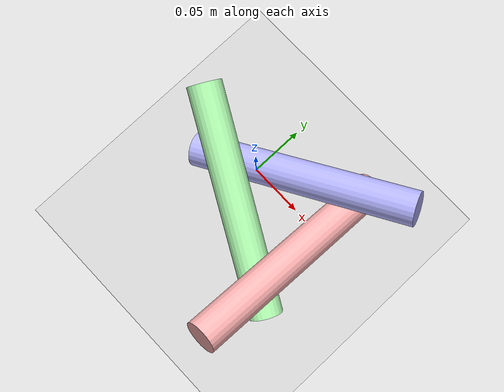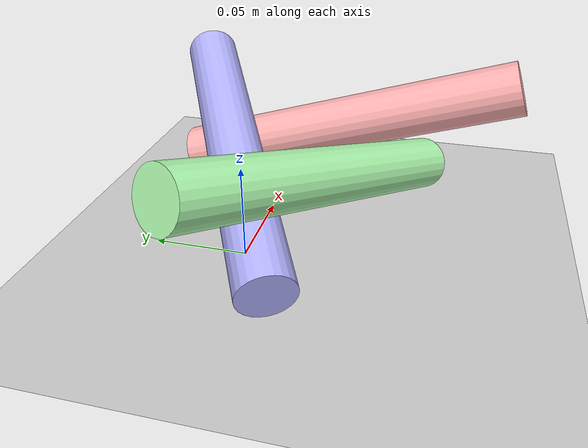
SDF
<sdf version="1.6">
 <world name="default">
  <light name="sun" type="directional">
   <pose>0 0 10 0 -0 0</pose>
   <diffuse>0.8 0.8 0.8 1</diffuse>
   <specular>0.2 0.2 0.2 1</specular>
   <attenuation>
    <range>1000</range>
    <constant>0.9</constant>
    <linear>0.01</linear>
    <quadratic>0.001</quadratic>
   </attenuation>
   <direction>-0.5 0.1 -0.9</direction>
  </light>
  <gravity>0 0 -9.8</gravity>
  <magnetic_field>6e-06 2.3e-05 -4.2e-05</magnetic_field>
  <atmosphere type="adiabatic"/>
  <physics name="default_physics" default="0" type="ode">
   <max_step_size>0.001</max_step_size>
   <real_time_factor>1</real_time_factor>
   <real_time_update_rate>1000</real_time_update_rate>
  </physics>
  <scene><ambient>0.4 0.4 0.4 1</ambient><background>0.7 0.7 0.7 1</background><shadows>1</shadows></scene>
  <spherical_coordinates>
   <surface_model>EARTH_WGS84</surface_model>
   <latitude_deg>0</latitude_deg>
   <longitude_deg>0</longitude_deg>
   <elevation>0</elevation>
   <heading_deg>0</heading_deg>
  </spherical_coordinates>
  <model name="ground_plane">
   <static>1</static>
   <link name="link">
    <collision name="collision">
     <geometry><plane><normal>0 0 1</normal><size>100 100</size></plane></geometry>
     <surface>
      <contact><collide_bitmask>65535</collide_bitmask></contact>
      <friction><ode><mu>100</mu><mu2>50</mu2></ode></friction>
     </surface>
    </collision>
    <visual name="visual">
     <cast_shadows>0</cast_shadows>
     <geometry><plane><normal>0 0 1</normal><size>100 100</size></plane></geometry>
     <material>
      <script><uri>file://media/materials/scripts/gazebo.material</uri><name>Gazebo/Grey</name></script>
     </material>
    </visual>
   </link>
   <pose>0.247663 0.314546 0 0 -0 0</pose>
  </model>
  <model name="blueStick">
   <link name="link_5">
    <inertial>
     <mass>0.00025133</mass>
     <inertia><ixx>8.6e-07</ixx><ixy>0</ixy><ixz>0</ixz><iyy>8.6e-07</iyy><iyz>0</iyz><izz>5e-08</izz></inertia>
    </inertial>
    <pose>-0.034517 0.108196 0.105338 -2.84399 -0.887231 -2.9509</pose>
    <visual name="visual">
     <geometry><cylinder><radius>0.015</radius><length>0.2</length></cylinder></geometry>
     <material>
      <lighting>1</lighting>
      <script><uri>file://media/materials/scripts/gazebo.material</uri><name>Gazebo/Grey</name></script>
      <shader type="pixel"><normal_map>__default__</normal_map></shader>
      <ambient>0.3 0.3 1 1</ambient>
      <diffuse>0.7 0.7 1 1</diffuse>
      <specular>0.01 0.01 0.01 1</specular>
      <emissive>0 0 0 1</emissive>
     </material>
    </visual>
    <collision name="collision">
     <geometry><cylinder><radius>0.015</radius><length>0.2</length></cylinder></geometry>
     <surface>
      <friction>
       <ode><mu>20</mu><mu2>20</mu2><fdir1>0 0 0</fdir1><slip1>0</slip1><slip2>0</slip2></ode>
       <torsional>
        <coefficient>1</coefficient>
        <patch_radius>0</patch_radius>
        <surface_radius>0</surface_radius>
        <use_patch_radius>1</use_patch_radius>
        <ode><slip>0</slip></ode>
       </torsional>
      </friction>
      <bounce><restitution_coefficient>0</restitution_coefficient><threshold>1e+06</threshold></bounce>
      <contact>
       <collide_without_contact>0</collide_without_contact>
       <collide_without_contact_bitmask>1</collide_without_contact_bitmask>
       <collide_bitmask>1</collide_bitmask>
       <ode>
        <soft_cfm>0</soft_cfm>
        <soft_erp>0.2</soft_erp>
        <kp>1e+13</kp>
        <kd>1</kd>
        <max_vel>0.01</max_vel>
        <min_depth>0</min_depth>
       </ode>
       <bullet>
        <split_impulse>1</split_impulse>
        <split_impulse_penetration_threshold>-0.01</split_impulse_penetration_threshold>
        <soft_cfm>0</soft_cfm>
        <soft_erp>0.2</soft_erp>
        <kp>1e+13</kp>
        <kd>1</kd>
       </bullet>
      </contact>
     </surface>
    </collision>
   </link>
   <static>1</static>
   <pose>0.027946 -0.129124 -0.007641 -0.468805 0.11416 -0.266955</pose>
  </model>
  <model name="redStick">
   <link name="link_2">
    <inertial>
     <mass>0.00025133</mass>
     <inertia><ixx>8.6e-07</ixx><ixy>0</ixy><ixz>0</ixz><iyy>8.6e-07</iyy><iyz>0</iyz><izz>5e-08</izz></inertia>
    </inertial>
    <pose>-0.129448 -0.105062 -0.011075 -1.53855 0 0</pose>
    <visual name="visual">
     <geometry><cylinder><radius>0.015</radius><length>0.2</length></cylinder></geometry>
     <material>
      <lighting>1</lighting>
      <script><uri>file://media/materials/scripts/gazebo.material</uri><name>Gazebo/Grey</name></script>
      <shader type="pixel"><normal_map>__default__</normal_map></shader>
      <ambient>1 0.3 0.3 1</ambient>
      <diffuse>1 0.7 0.7 1</diffuse>
      <specular>0.01 0.01 0.01 1</specular>
      <emissive>0 0 0 1</emissive>
     </material>
    </visual>
    <collision name="collision">
     <geometry><cylinder><radius>0.015</radius><length>0.2</length></cylinder></geometry>
     <surface>
      <friction>
       <ode><mu>20</mu><mu2>20</mu2><fdir1>0 0 0</fdir1><slip1>0</slip1><slip2>0</slip2></ode>
       <torsional>
        <coefficient>1</coefficient>
        <patch_radius>0</patch_radius>
        <surface_radius>0</surface_radius>
        <use_patch_radius>1</use_patch_radius>
        <ode><slip>0</slip></ode>
       </torsional>
      </friction>
      <bounce><restitution_coefficient>0</restitution_coefficient><threshold>1e+06</threshold></bounce>
      <contact>
       <collide_without_contact>0</collide_without_contact>
       <collide_without_contact_bitmask>1</collide_without_contact_bitmask>
       <collide_bitmask>1</collide_bitmask>
       <ode>
        <soft_cfm>0</soft_cfm>
        <soft_erp>0.2</soft_erp>
        <kp>1e+13</kp>
        <kd>1</kd>
        <max_vel>0.01</max_vel>
        <min_depth>0</min_depth>
       </ode>
       <bullet>
        <split_impulse>1</split_impulse>
        <split_impulse_penetration_threshold>-0.01</split_impulse_penetration_threshold>
        <soft_cfm>0</soft_cfm>
        <soft_erp>0.2</soft_erp>
        <kp>1e+13</kp>
        <kd>1</kd>
       </bullet>
      </contact>
     </surface>
    </collision>
   </link>
   <static>1</static>
   <pose>0.198074 0.044669 -0.042165 -0.382095 0.492066 -0.187156</pose>
  </model>
  <model name="greenStick">
   <link name="link_4">
    <inertial>
     <mass>0.00025133</mass>
     <inertia><ixx>8.6e-07</ixx><ixy>0</ixy><ixz>0</ixz><iyy>8.6e-07</iyy><iyz>0</iyz><izz>5e-08</izz></inertia>
    </inertial>
    <pose>0.033094 -0.002991 0.062967 -0.385274 -1.07072 -0.05997</pose>
    <visual name="visual">
     <geometry><cylinder><radius>0.015</radius><length>0.2</length></cylinder></geometry>
     <material>
      <lighting>1</lighting>
      <script><uri>file://media/materials/scripts/gazebo.material</uri><name>Gazebo/Grey</name></script>
      <shader type="pixel"><normal_map>__default__</normal_map></shader>
      <ambient>0.3 1 0.3 1</ambient>
      <diffuse>0.7 1 0.7 1</diffuse>
      <specular>0.01 0.01 0.01 1</specular>
      <emissive>0 0 0 1</emissive>
     </material>
    </visual>
    <collision name="collision">
     <geometry><cylinder><radius>0.015</radius><length>0.2</length></cylinder></geometry>
     <surface>
      <friction>
       <ode><mu>20</mu><mu2>20</mu2><fdir1>0 0 0</fdir1><slip1>0</slip1><slip2>0</slip2></ode>
       <torsional>
        <coefficient>1</coefficient>
        <patch_radius>0</patch_radius>
        <surface_radius>0</surface_radius>
        <use_patch_radius>1</use_patch_radius>
        <ode><slip>0</slip></ode>
       </torsional>
      </friction>
      <bounce><restitution_coefficient>0</restitution_coefficient><threshold>1e+06</threshold></bounce>
      <contact>
       <collide_without_contact>0</collide_without_contact>
       <collide_without_contact_bitmask>1</collide_without_contact_bitmask>
       <collide_bitmask>1</collide_bitmask>
       <ode>
        <soft_cfm>0</soft_cfm>
        <soft_erp>0.2</soft_erp>
        <kp>1e+13</kp>
        <kd>1</kd>
        <max_vel>0.01</max_vel>
        <min_depth>0</min_depth>
       </ode>
       <bullet>
        <split_impulse>1</split_impulse>
        <split_impulse_penetration_threshold>-0.01</split_impulse_penetration_threshold>
        <soft_cfm>0</soft_cfm>
        <soft_erp>0.2</soft_erp>
        <kp>1e+13</kp>
        <kd>1</kd>
       </bullet>
      </contact>
     </surface>
    </collision>
   </link>
   <static>1</static>
   <pose>0.015407 0.001355 -0.017045 0.560506 -0.358535 -0.364444</pose>
  </model>
 </world>
</sdf>
